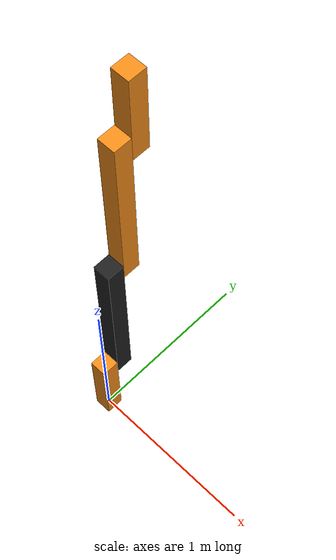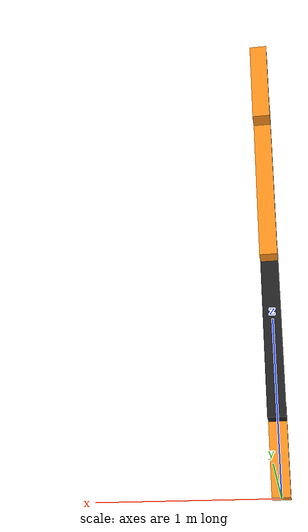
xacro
<?xml version="1.0"?>
<!-- Revolute-Revolute Manipulator -->
<robot name="irac" xmlns:xacro="http://www.ros.org/wiki/xacro">

  <!-- Constants for robot dimensions -->
  <xacro:property name="PI" value="3.1415926535897931"/>
  <xacro:property name="mass" value="1" /> <!-- arbitrary value for mass -->
  <xacro:property name="width" value="0.1" /> <!-- Square dimensions (widthxwidth) of beams -->
  <xacro:property name="height1" value=".5" /> <!-- Link 1 -->
  <xacro:property name="height2" value="1" /> <!-- Link 2 -->
  <xacro:property name="height3" value="1" /> <!-- Link 3 -->
  <xacro:property name="height4" value=".5" /> <!-- Link 0 -->
  <xacro:property name="camera_link" value="0.05" /> <!-- Size of square 'camera' box -->
  <xacro:property name="axel_offset" value="0.05" /> <!-- Space btw top of beam and the each joint -->

  <!-- Import all Gazebo-customization elements, including Gazebo colors -->
  <xacro:include filename="$(find IRAC)/urdf/irac.gazebo" />
  <!-- Import Rviz colors -->
  <xacro:include filename="$(find IRAC)/urdf/materials.xacro" />

  <!-- Used for fixing robot to Gazebo 'base_link' -->
  <link name="world"/>

  <joint name="joint1" type="continuous">
    <parent link="world"/>
    <child link="link1"/>
    <origin xyz="0 0 0" rpy="0 0 0"/>
    <axis xyz="0 0 1"/>
    <dynamics damping="0.7"/>
  </joint>

  <!-- Base Link -->
  <link name="link1">
    <collision>
      <origin xyz="0 0 ${height1/2}" rpy="0 0 0"/>
      <geometry>
	<box size="${width} ${width} ${height1}"/>
      </geometry>
    </collision>

    <visual>
      <origin xyz="0 0 ${height1/2}" rpy="0 0 0"/>
      <geometry>
	<box size="${width} ${width} ${height1}"/>
      </geometry>
      <material name="orange"/>
    </visual>

    <inertial>
      <origin xyz="0 0 ${height1/2}" rpy="0 0 0"/>
      <mass value="${mass}"/>
      <inertia
	  ixx="${mass / 12.0 * (width*width + height1*height1)}" ixy="0.0" ixz="0.0"
	  iyy="${mass / 12.0 * (height1*height1 + width*width)}" iyz="0.0"
	  izz="${mass / 12.0 * (width*width + width*width)}"/>
    </inertial>
  </link>

  <joint name="joint2" type="continuous">
    <parent link="link1"/>
    <child link="link2"/>
    <origin xyz="0 ${width} ${height1 - axel_offset}" rpy="0 0 0"/>
    <axis xyz="0 1 0"/>
    <dynamics damping="0.7"/>
  </joint>

  <!-- Link 2 -->
  <link name="link2">
    <collision>
      <origin xyz="0 0 ${height2/2 - axel_offset}" rpy="0 0 0"/>
      <geometry>
	<box size="${width} ${width} ${height2}"/>
      </geometry>
    </collision>

    <visual>
      <origin xyz="0 0 ${height2/2 - axel_offset}" rpy="0 0 0"/>
      <geometry>
	<box size="${width} ${width} ${height2}"/>
      </geometry>
      <material name="black"/>
    </visual>

    <inertial>
      <origin xyz="0 0 ${height2/2 - axel_offset}" rpy="0 0 0"/>
      <mass value="${mass}"/>
      <inertia
	  ixx="${mass / 12.0 * (width*width + height2*height2)}" ixy="0.0" ixz="0.0"
	  iyy="${mass / 12.0 * (height2*height2 + width*width)}" iyz="0.0"
	  izz="${mass / 12.0 * (width*width + width*width)}"/>
    </inertial>
  </link>

  <joint name="joint3" type="continuous">
    <parent link="link2"/>
    <child link="link3"/>
    <origin xyz="0 ${width} ${height2 - axel_offset*2}" rpy="0 0 0"/>
    <axis xyz="0 1 0"/>
    <dynamics damping="0.7"/>
  </joint>

  <!-- Top Link -->
  <link name="link3">
    <collision>
      <origin xyz="0 0 ${height3/2 - axel_offset}" rpy="0 0 0"/>
      <geometry>
	<box size="${width} ${width} ${height3}"/>
      </geometry>
    </collision>

    <visual>
      <origin xyz="0 0 ${height3/2 - axel_offset}" rpy="0 0 0"/>
      <geometry>
	<box size="${width} ${width} ${height3}"/>
      </geometry>
      <material name="orange"/>
    </visual>

    <inertial>
      <origin xyz="0 0 ${height3/2 - axel_offset}" rpy="0 0 0"/>
      <mass value="${mass}"/>
      <inertia
	  ixx="${mass / 12.0 * (width*width + height3*height3)}" ixy="0.0" ixz="0.0"
	  iyy="${mass / 12.0 * (height3*height3 + width*width)}" iyz="0.0"
	  izz="${mass / 12.0 * (width*width + width*width)}"/>
    </inertial>
  </link>

<joint name="joint4" type="continuous">
    <parent link="link3"/>
    <child link="link4"/>
    <origin xyz="0 ${width} ${height3 - axel_offset*3}" rpy="0 0 0"/>
    <axis xyz="0 1 0"/>
    <dynamics damping="0.7"/>
  </joint>

  <!-- EAOT-->
  <link name="link4">
    <collision>
      <origin xyz="0 0 ${height4/2 - axel_offset}" rpy="0 0 0"/>
      <geometry>
	<box size="${width} ${width} ${height4}"/>
      </geometry>
    </collision>

    <visual>
      <origin xyz="0 0 ${height4/2 - axel_offset}" rpy="0 0 0"/>
      <geometry>
	<box size="${width} ${width} ${height4}"/>
      </geometry>
      <material name="orange"/>
    </visual>

    <inertial>
      <origin xyz="0 0 ${height4/2 - axel_offset}" rpy="0 0 0"/>
      <mass value="${mass}"/>
      <inertia
	  ixx="${mass / 12.0 * (width*width + height4*height4)}" ixy="0.0" ixz="0.0"
	  iyy="${mass / 12.0 * (height4*height4 + width*width)}" iyz="0.0"
	  izz="${mass / 12.0 * (width*width + width*width)}"/>
    </inertial>
  </link>

  <transmission name="tran1">
    <type>transmission_interface/SimpleTransmission</type>
    <joint name="joint1">
      <hardwareInterface>hardware_interface/EffortJointInterface</hardwareInterface>
    </joint>
    <actuator name="motor1">
      <hardwareInterface>hardware_interface/EffortJointInterface</hardwareInterface>
      <mechanicalReduction>1</mechanicalReduction>
    </actuator>
  </transmission>

  <transmission name="tran2">
    <type>transmission_interface/SimpleTransmission</type>
    <joint name="joint2">
      <hardwareInterface>hardware_interface/EffortJointInterface</hardwareInterface>
    </joint>
    <actuator name="motor2">
      <hardwareInterface>hardware_interface/EffortJointInterface</hardwareInterface>
      <mechanicalReduction>1</mechanicalReduction>
    </actuator>
  </transmission>

  <transmission name="tran3">
    <type>transmission_interface/SimpleTransmission</type>
    <joint name="joint3">
      <hardwareInterface>hardware_interface/EffortJointInterface</hardwareInterface>
    </joint>
    <actuator name="motor3">
      <hardwareInterface>hardware_interface/EffortJointInterface</hardwareInterface>
      <mechanicalReduction>1</mechanicalReduction>
    </actuator>
  </transmission>

  <transmission name="tran4">
    <type>transmission_interface/SimpleTransmission</type>
    <joint name="joint4">
      <hardwareInterface>hardware_interface/EffortJointInterface</hardwareInterface>
    </joint>
    <actuator name="motor4">
      <hardwareInterface>hardware_interface/EffortJointInterface</hardwareInterface>
      <mechanicalReduction>1</mechanicalReduction>
    </actuator>
  </transmission>

</robot>
